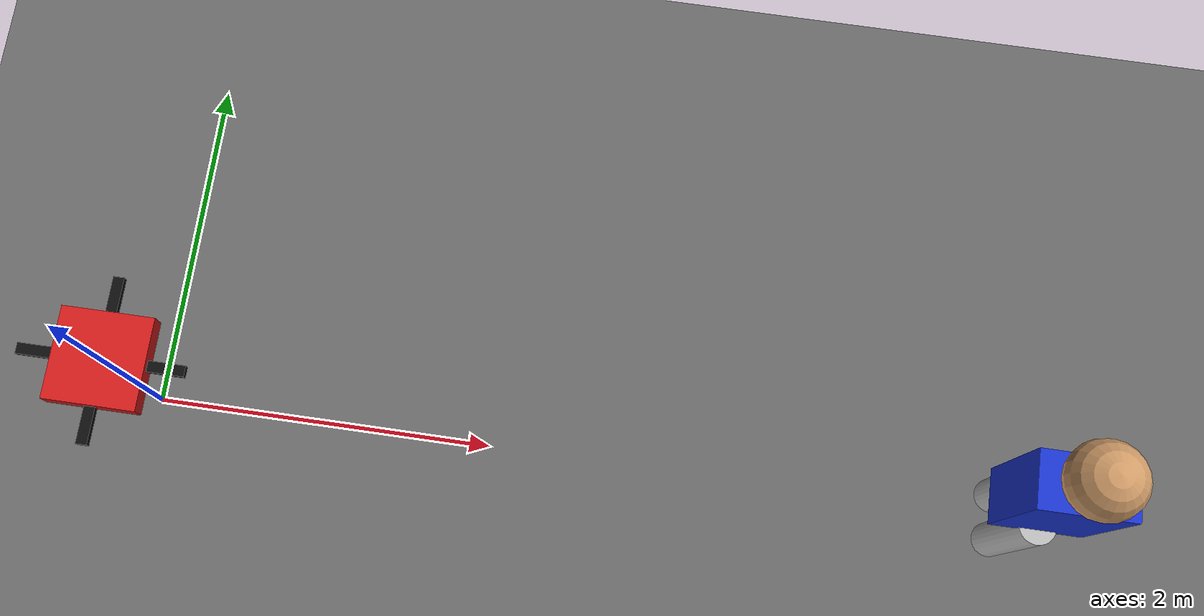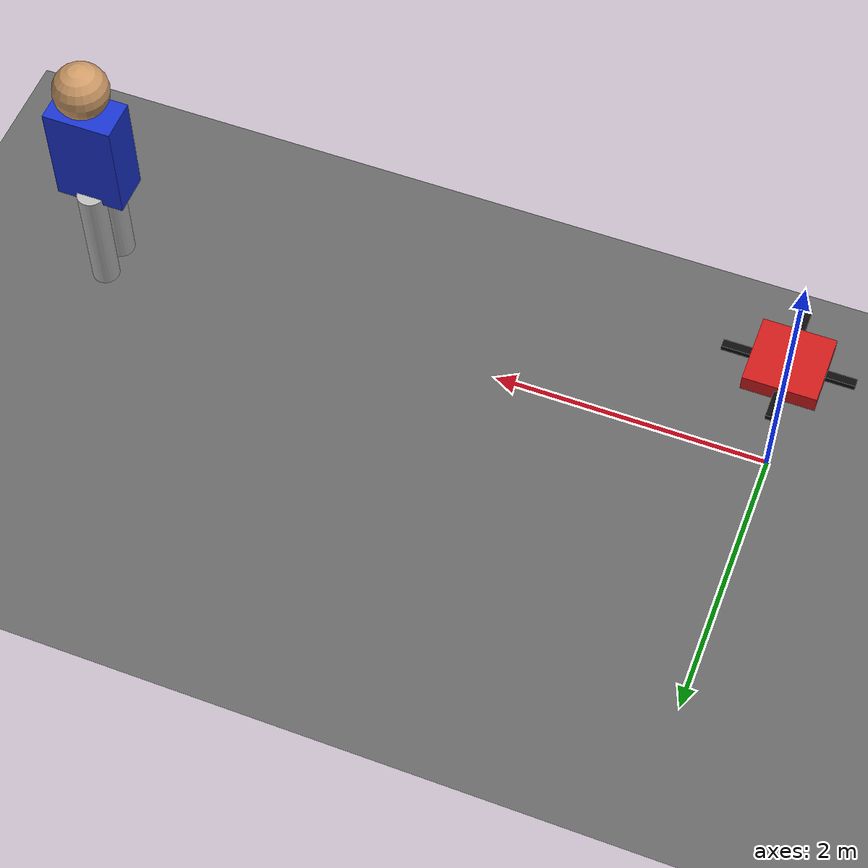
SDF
<?xml version="1.0" ?>
<sdf version="1.9">
  <world name="drone_world">

    <physics name="physics" type="ignored">
      <max_step_size>0.001</max_step_size>
      <real_time_factor>1.0</real_time_factor>
    </physics>

    <!-- Required Gazebo systems -->
    <plugin
      filename="gz-sim-physics-system"
      name="gz::sim::systems::Physics"/>

    <plugin
      filename="gz-sim-user-commands-system"
      name="gz::sim::systems::UserCommands"/>

    <plugin
      filename="gz-sim-scene-broadcaster-system"
      name="gz::sim::systems::SceneBroadcaster"/>

    <!-- Required for the monocular RGB camera -->
    <plugin
      filename="gz-sim-sensors-system"
      name="gz::sim::systems::Sensors">
      <render_engine>ogre2</render_engine>
    </plugin>

    <gravity>0 0 -9.81</gravity>

    <scene>
      <ambient>0.5 0.5 0.5 1</ambient>
      <background>0.8 0.8 0.8 1</background>
    </scene>

    <!-- Sun -->
    <light name="sun" type="directional">
      <pose>0 0 10 0 0 0</pose>
      <cast_shadows>true</cast_shadows>
      <diffuse>0.8 0.8 0.8 1</diffuse>
      <specular>0.2 0.2 0.2 1</specular>
      <direction>-0.5 0.1 -0.9</direction>
    </light>

    <!-- Ground -->
    <model name="ground">
      <static>true</static>
      <link name="ground_link">
        <collision name="ground_collision">
          <geometry>
            <plane>
              <normal>0 0 1</normal>
              <size>30 30</size>
            </plane>
          </geometry>
        </collision>

        <visual name="ground_visual">
          <geometry>
            <plane>
              <normal>0 0 1</normal>
              <size>30 30</size>
            </plane>
          </geometry>
          <material>
            <ambient>0.3 0.3 0.3 1</ambient>
            <diffuse>0.4 0.4 0.4 1</diffuse>
          </material>
        </visual>
      </link>
    </model>

    <!-- Simple human-shaped obstacle -->
    <model name="person">
      <static>true</static>
      <pose>5 0 0 0 0 3.14159</pose>

      <link name="person_link">

        <!-- Collision used by the simulator -->
        <collision name="body_collision">
          <pose>0 0 0.9 0 0 0</pose>
          <geometry>
            <cylinder>
              <radius>0.3</radius>
              <length>1.8</length>
            </cylinder>
          </geometry>
        </collision>

        <!-- Torso -->
        <visual name="torso">
          <pose>0 0 1.25 0 0 0</pose>
          <geometry>
            <box>
              <size>0.5 0.3 0.8</size>
            </box>
          </geometry>
          <material>
            <ambient>0.1 0.2 0.8 1</ambient>
            <diffuse>0.1 0.2 0.8 1</diffuse>
          </material>
        </visual>

        <!-- Head -->
        <visual name="head">
          <pose>0 0 1.85 0 0 0</pose>
          <geometry>
            <sphere>
              <radius>0.2</radius>
            </sphere>
          </geometry>
          <material>
            <ambient>0.8 0.6 0.4 1</ambient>
            <diffuse>0.8 0.6 0.4 1</diffuse>
          </material>
        </visual>

        <!-- Legs -->
        <visual name="left_leg">
          <pose>0 0.13 0.45 0 0 0</pose>
          <geometry>
            <cylinder>
              <radius>0.1</radius>
              <length>0.9</length>
            </cylinder>
          </geometry>
        </visual>

        <visual name="right_leg">
          <pose>0 -0.13 0.45 0 0 0</pose>
          <geometry>
            <cylinder>
              <radius>0.1</radius>
              <length>0.9</length>
            </cylinder>
          </geometry>
        </visual>
      </link>
    </model>

    <!-- Initial drone platform -->
    <model name="drone">
      <!-- Keep it static while developing the perception and costmap code.
           A dynamic drone needs motors and a flight controller. -->
      <static>true</static>
      <pose>0 0 1.2 0 0 0</pose>

      <link name="base_link">
        <inertial>
          <mass>1.5</mass>
          <inertia>
            <ixx>0.03</ixx>
            <iyy>0.03</iyy>
            <izz>0.05</izz>
          </inertia>
        </inertial>

        <collision name="body_collision">
          <geometry>
            <box>
              <size>0.5 0.5 0.12</size>
            </box>
          </geometry>
        </collision>

        <visual name="body_visual">
          <geometry>
            <box>
              <size>0.5 0.5 0.12</size>
            </box>
          </geometry>
          <material>
            <ambient>0.8 0.1 0.1 1</ambient>
            <diffuse>0.8 0.1 0.1 1</diffuse>
          </material>
        </visual>

        <!-- Arms -->
        <visual name="arm_x">
          <geometry>
            <box>
              <size>0.9 0.06 0.04</size>
            </box>
          </geometry>
          <material>
            <ambient>0.05 0.05 0.05 1</ambient>
          </material>
        </visual>

        <visual name="arm_y">
          <geometry>
            <box>
              <size>0.06 0.9 0.04</size>
            </box>
          </geometry>
          <material>
            <ambient>0.05 0.05 0.05 1</ambient>
          </material>
        </visual>

        <!-- Forward monocular camera. Depth is inferred on the laptop. -->
        <sensor name="runner_camera" type="camera">
          <pose>0.25 0 0.05 0 0 0</pose>
          <topic>/camera/image_raw</topic>
          <update_rate>15</update_rate>
          <always_on>true</always_on>
          <visualize>true</visualize>
          <camera>
            <horizontal_fov>1.3962634</horizontal_fov>
            <image>
              <width>640</width>
              <height>480</height>
              <format>R8G8B8</format>
            </image>
            <clip>
              <near>0.1</near>
              <far>100.0</far>
            </clip>
          </camera>
        </sensor>
      </link>
    </model>

  </world>
</sdf>
